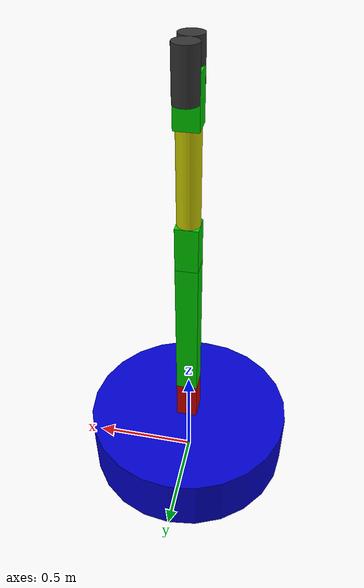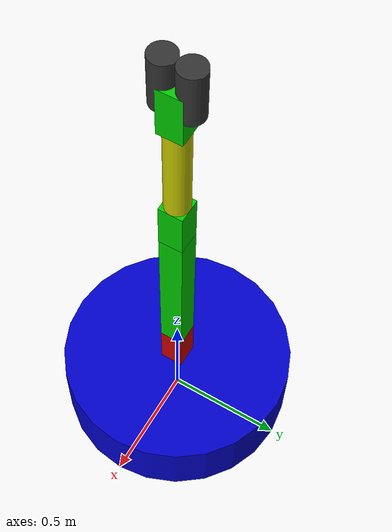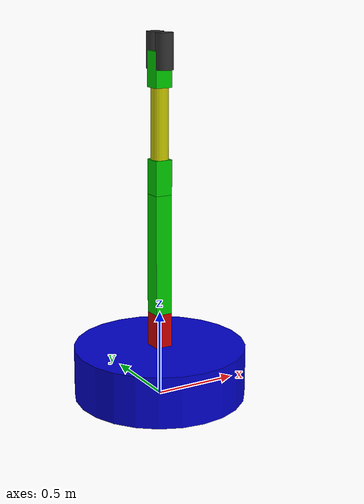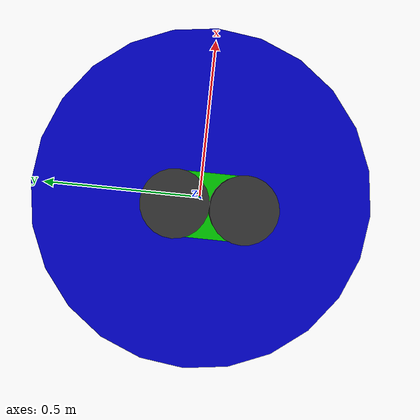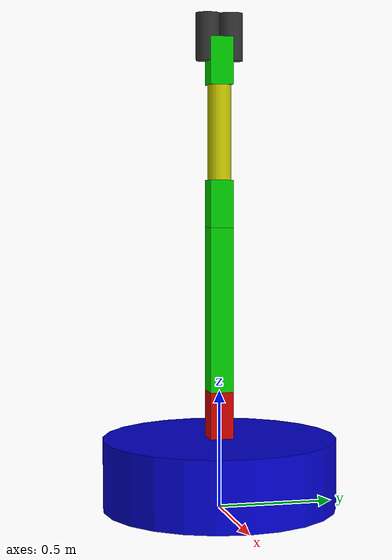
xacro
<?xml version="1.0" ?>
<!-- |    This document was autogenerated by xacro from brazo_robert.xacro             | -->
<!-- |    EDITING THIS FILE BY HAND IS NOT RECOMMENDED                                 | -->
<robot name="brazo_robert">
  <!-- Base del brazo -->
  <link name="base_link">
    <inertial>
      <mass value="1.0"/>
      <origin xyz="0 0 0.15"/>
      <inertia ixx="0.01" ixy="0" ixz="0" iyy="0.01" iyz="0" izz="0.01"/>
    </inertial>
    <collision>
      <origin xyz="0 0 0.15"/>
      <geometry>
        <cylinder length="0.3" radius="0.5"/>
      </geometry>
    </collision>
    <visual>
      <origin xyz="0 0 0.15"/>
      <geometry>
        <cylinder length="0.3" radius="0.5"/>
      </geometry>
      <material name="blue">
        <color rgba="0 0 0.8 1"/>
      </material>
    </visual>
  </link>
  <link name="segmento1_link">
    <inertial>
      <mass value="1.0"/>
      <origin xyz="0 0 0.1"/>
      <inertia ixx="0.01" ixy="0" ixz="0" iyy="0.01" iyz="0" izz="0.01"/>
    </inertial>
    <collision>
      <origin xyz="0 0 0.1"/>
      <!-- 🔹 Mueve el cubo hacia arriba -->
      <geometry>
        <box size="0.1 0.1 0.2"/>
      </geometry>
    </collision>
    <visual>
      <origin xyz="0 0 0.1"/>
      <!-- 🔹 Mueve el cubo hacia arriba -->
      <geometry>
        <box size="0.1 0.1 0.2"/>
      </geometry>
      <material name="0.8 0 0 1">
        <color rgba="0.8 0 0 1"/>
      </material>
    </visual>
  </link>
  <joint name="segmento1_joint" type="revolute">
    <parent link="base_link"/>
    <child link="segmento1_link"/>
    <origin rpy="0 0 0" xyz="0 0 0.3"/>
    <axis xyz="0 0 1"/>
    <limit effort="100.0" lower="-1.57" upper="1.57" velocity="0.5"/>
  </joint>
  <link name="segmento2_link">
    <inertial>
      <mass value="1.0"/>
      <origin xyz="0 0 0.35"/>
      <inertia ixx="0.01" ixy="0" ixz="0" iyy="0.01" iyz="0" izz="0.01"/>
    </inertial>
    <collision>
      <origin xyz="0 0 0.35"/>
      <!-- 🔹 Mueve el cubo hacia arriba -->
      <geometry>
        <box size="0.1 0.1 0.7"/>
      </geometry>
    </collision>
    <visual>
      <origin xyz="0 0 0.35"/>
      <!-- 🔹 Mueve el cubo hacia arriba -->
      <geometry>
        <box size="0.1 0.1 0.7"/>
      </geometry>
      <material name="0 0.8 0 1">
        <color rgba="0 0.8 0 1"/>
      </material>
    </visual>
  </link>
  <joint name="segmento2_joint" type="revolute">
    <parent link="segmento1_link"/>
    <child link="segmento2_link"/>
    <origin rpy="0 0 0" xyz="0 0 0.2"/>
    <axis xyz="0 1 0"/>
    <limit effort="100.0" lower="-1.57" upper="1.57" velocity="0.5"/>
  </joint>
  <link name="segmento3_link">
    <inertial>
      <mass value="1.0"/>
      <origin xyz="0 0 0.1"/>
      <inertia ixx="0.01" ixy="0" ixz="0" iyy="0.01" iyz="0" izz="0.01"/>
    </inertial>
    <collision>
      <origin xyz="0 0 0.1"/>
      <!-- 🔹 Mueve el cubo hacia arriba -->
      <geometry>
        <box size="0.1 0.1 0.2"/>
      </geometry>
    </collision>
    <visual>
      <origin xyz="0 0 0.1"/>
      <!-- 🔹 Mueve el cubo hacia arriba -->
      <geometry>
        <box size="0.1 0.1 0.2"/>
      </geometry>
      <material name="0 0.8 0 1">
        <color rgba="0 0.8 0 1"/>
      </material>
    </visual>
  </link>
  <joint name="segmento3_joint" type="revolute">
    <parent link="segmento2_link"/>
    <child link="segmento3_link"/>
    <origin rpy="0 0 0" xyz="0 0 0.7"/>
    <axis xyz="0 1 0"/>
    <limit effort="100.0" lower="-1.57" upper="1.57" velocity="0.5"/>
  </joint>
  <link name="segmento4_link">
    <inertial>
      <mass value="0.5"/>
      <origin xyz="0 0 0.2"/>
      <inertia ixx="0.01" ixy="0" ixz="0" iyy="0.01" iyz="0" izz="0.01"/>
    </inertial>
    <collision>
      <origin xyz="0 0 0.2"/>
      <geometry>
        <cylinder length="0.4" radius="0.05"/>
      </geometry>
    </collision>
    <visual>
      <origin xyz="0 0 0.2"/>
      <geometry>
        <cylinder length="0.4" radius="0.05"/>
      </geometry>
      <material name="0.8 0.8 0 1">
        <color rgba="0.8 0.8 0 1"/>
      </material>
    </visual>
  </link>
  <joint name="segmento4_rot" type="continuous">
    <!-- 🔹 Tipo continuo para rotación infinita -->
    <parent link="segmento3_link"/>
    <child link="segmento4_link"/>
    <origin rpy="0 0 0" xyz="0 0 0.2"/>
    <axis xyz="0 0 1"/>
  </joint>
  <link name="segmento5_link">
    <inertial>
      <mass value="1.0"/>
      <origin xyz="0 0 0.1"/>
      <inertia ixx="0.01" ixy="0" ixz="0" iyy="0.01" iyz="0" izz="0.01"/>
    </inertial>
    <collision>
      <origin xyz="0 0 0.1"/>
      <!-- 🔹 Mueve el cubo hacia arriba -->
      <geometry>
        <box size="0.1 0.1 0.2"/>
      </geometry>
    </collision>
    <visual>
      <origin xyz="0 0 0.1"/>
      <!-- 🔹 Mueve el cubo hacia arriba -->
      <geometry>
        <box size="0.1 0.1 0.2"/>
      </geometry>
      <material name="0 0.8 0 1">
        <color rgba="0 0.8 0 1"/>
      </material>
    </visual>
  </link>
  <joint name="segmento5_joint" type="revolute">
    <parent link="segmento4_link"/>
    <child link="segmento5_link"/>
    <origin rpy="0 0 0" xyz="0 0 0.4"/>
    <axis xyz="0 1 0"/>
    <limit effort="100.0" lower="-1.57" upper="1.57" velocity="0.5"/>
  </joint>
  <!-- Gripper izquierdo -->
  <joint name="gripper_left_joint" type="prismatic">
    <parent link="segmento5_link"/>
    <child link="gripper_left"/>
    <origin xyz="0 0.05 0.2"/>
    <axis xyz="0 1 0"/>
    <limit effort="10.0" lower="0.0" upper="0.05" velocity="0.1"/>
  </joint>
  <link name="gripper_left">
    <inertial>
      <mass value="0.1"/>
      <origin xyz="0 0 0"/>
      <inertia ixx="0.001" ixy="0" ixz="0" iyy="0.001" iyz="0" izz="0.001"/>
    </inertial>
    <visual>
      <geometry>
        <cylinder length="0.2" radius="0.05"/>
      </geometry>
      <material name="black">
        <color rgba="0.2 0.2 0.2 1"/>
      </material>
    </visual>
  </link>
  <!-- Gripper derecho -->
  <joint name="gripper_right_joint" type="prismatic">
    <parent link="segmento5_link"/>
    <child link="gripper_right"/>
    <origin xyz="0 -0.05 0.2"/>
    <axis xyz="0 -1 0"/>
    <!-- Se mueve en dirección opuesta -->
    <limit effort="10.0" lower="0.0" upper="0.05" velocity="0.1"/>
  </joint>
  <link name="gripper_right">
    <inertial>
      <mass value="0.1"/>
      <origin xyz="0 0 0"/>
      <inertia ixx="0.001" ixy="0" ixz="0" iyy="0.001" iyz="0" izz="0.001"/>
    </inertial>
    <visual>
      <geometry>
        <cylinder length="0.2" radius="0.05"/>
      </geometry>
      <material name="black">
        <color rgba="0.2 0.2 0.2 1"/>
      </material>
    </visual>
  </link>
</robot>
